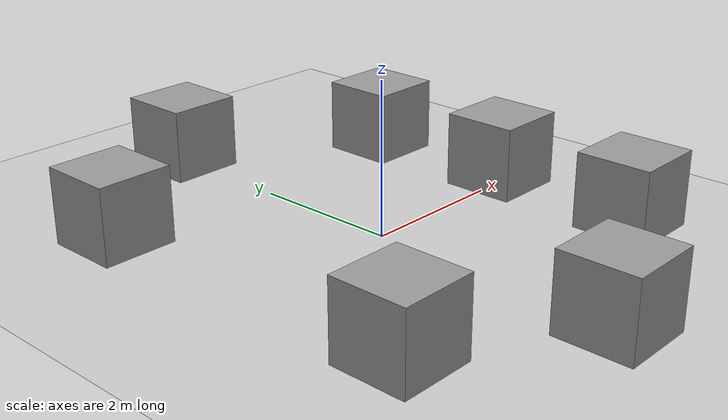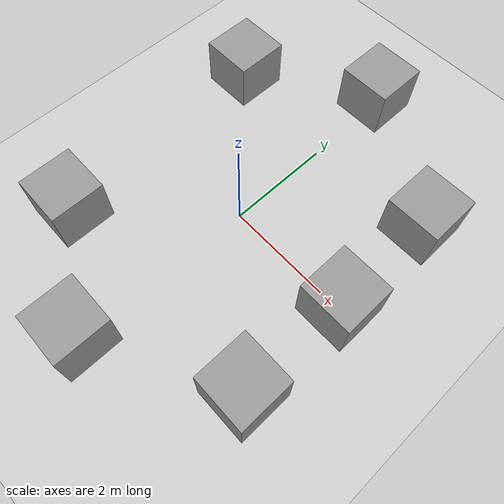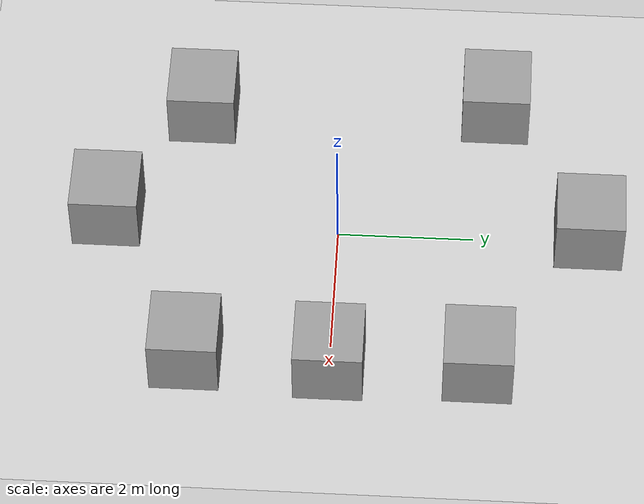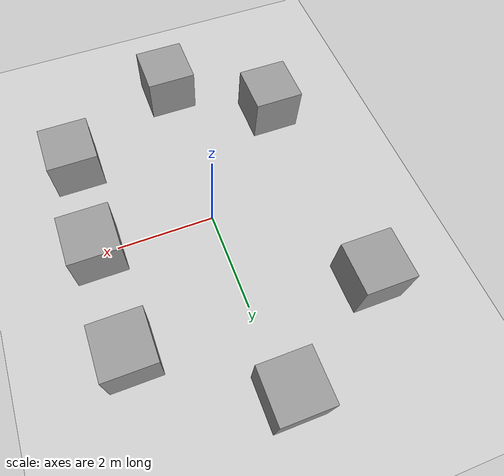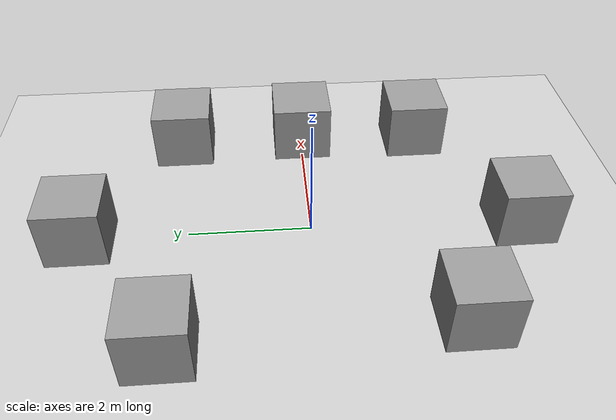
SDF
<sdf version="1.7">
 <world name="default">
  <light name="sun" type="directional">
   <pose>0 0 10 0 -0 0</pose>
   <diffuse>0.8 0.8 0.8 1</diffuse>
   <specular>0.2 0.2 0.2 1</specular>
   <attenuation>
    <range>1000</range>
    <constant>0.9</constant>
    <linear>0.01</linear>
    <quadratic>0.001</quadratic>
   </attenuation>
   <direction>-0.5 0.1 -0.9</direction>
   <spot><inner_angle>0</inner_angle><outer_angle>0</outer_angle><falloff>0</falloff></spot>
  </light>
  <model name="ground_plane">
   <static>1</static>
   <link name="link">
    <collision name="collision">
     <geometry><plane><normal>0 0 1</normal><size>100 100</size></plane></geometry>
     <surface>
      <contact><collide_bitmask>65535</collide_bitmask></contact>
      <friction><ode><mu>100</mu><mu2>50</mu2></ode></friction>
     </surface>
    </collision>
    <visual name="visual">
     <cast_shadows>0</cast_shadows>
     <geometry><plane><normal>0 0 1</normal><size>100 100</size></plane></geometry>
     <material>
      <script><uri>file://media/materials/scripts/gazebo.material</uri><name>Gazebo/Grey</name></script>
     </material>
    </visual>
   </link>
  </model>
  <gravity>0 0 -9.8</gravity>
  <magnetic_field>6e-06 2.3e-05 -4.2e-05</magnetic_field>
  <atmosphere type="adiabatic"/>
  <physics type="ode">
   <max_step_size>0.001</max_step_size>
   <real_time_factor>1</real_time_factor>
   <real_time_update_rate>1000</real_time_update_rate>
  </physics>
  <scene><ambient>0.4 0.4 0.4 1</ambient><background>0.7 0.7 0.7 1</background><shadows>1</shadows></scene>
  <spherical_coordinates>
   <surface_model>EARTH_WGS84</surface_model>
   <latitude_deg>0</latitude_deg>
   <longitude_deg>0</longitude_deg>
   <elevation>0</elevation>
   <heading_deg>0</heading_deg>
  </spherical_coordinates>
  <model name="unit_box">
   <pose>2.32698 -2.06494 0.499995 0 1e-05 0</pose>
   <link name="link">
    <inertial>
     <mass>1</mass>
     <inertia>
      <ixx>0.166667</ixx>
      <ixy>0</ixy>
      <ixz>0</ixz>
      <iyy>0.166667</iyy>
      <iyz>0</iyz>
      <izz>0.166667</izz>
     </inertia>
    </inertial>
    <collision name="collision"><geometry><box><size>1 1 1</size></box></geometry></collision>
    <visual name="visual">
     <geometry><box><size>1 1 1</size></box></geometry>
     <material>
      <script><name>Gazebo/Grey</name><uri>file://media/materials/scripts/gazebo.material</uri></script>
     </material>
    </visual>
   </link>
  </model>
  <model name="unit_box_0">
   <pose>2.3383 2.13902 0.499995 -1e-05 -0 -0</pose>
   <link name="link">
    <inertial>
     <mass>1</mass>
     <inertia>
      <ixx>0.166667</ixx>
      <ixy>0</ixy>
      <ixz>0</ixz>
      <iyy>0.166667</iyy>
      <iyz>0</iyz>
      <izz>0.166667</izz>
     </inertia>
    </inertial>
    <collision name="collision"><geometry><box><size>1 1 1</size></box></geometry></collision>
    <visual name="visual">
     <geometry><box><size>1 1 1</size></box></geometry>
     <material>
      <script><name>Gazebo/Grey</name><uri>file://media/materials/scripts/gazebo.material</uri></script>
     </material>
    </visual>
   </link>
  </model>
  <model name="unit_box_1">
   <pose>2.39418 0.002321 0.499995 0 1e-05 0</pose>
   <link name="link">
    <inertial>
     <mass>1</mass>
     <inertia>
      <ixx>0.166667</ixx>
      <ixy>0</ixy>
      <ixz>0</ixz>
      <iyy>0.166667</iyy>
      <iyz>0</iyz>
      <izz>0.166667</izz>
     </inertia>
    </inertial>
    <collision name="collision"><geometry><box><size>1 1 1</size></box></geometry></collision>
    <visual name="visual">
     <geometry><box><size>1 1 1</size></box></geometry>
     <material>
      <script><name>Gazebo/Grey</name><uri>file://media/materials/scripts/gazebo.material</uri></script>
     </material>
    </visual>
   </link>
  </model>
  <model name="unit_box_2">
   <pose>-2.08883 -2.13334 0.499995 -1e-05 -0 -0</pose>
   <link name="link">
    <inertial>
     <mass>1</mass>
     <inertia>
      <ixx>0.166667</ixx>
      <ixy>0</ixy>
      <ixz>0</ixz>
      <iyy>0.166667</iyy>
      <iyz>0</iyz>
      <izz>0.166667</izz>
     </inertia>
    </inertial>
    <collision name="collision"><geometry><box><size>1 1 1</size></box></geometry></collision>
    <visual name="visual">
     <geometry><box><size>1 1 1</size></box></geometry>
     <material>
      <script><name>Gazebo/Grey</name><uri>file://media/materials/scripts/gazebo.material</uri></script>
     </material>
    </visual>
   </link>
  </model>
  <model name="unit_box_3">
   <pose>-2.30104 2.26802 0.499995 0 1e-05 0</pose>
   <link name="link">
    <inertial>
     <mass>1</mass>
     <inertia>
      <ixx>0.166667</ixx>
      <ixy>0</ixy>
      <ixz>0</ixz>
      <iyy>0.166667</iyy>
      <iyz>0</iyz>
      <izz>0.166667</izz>
     </inertia>
    </inertial>
    <collision name="collision"><geometry><box><size>1 1 1</size></box></geometry></collision>
    <visual name="visual">
     <geometry><box><size>1 1 1</size></box></geometry>
     <material>
      <script><name>Gazebo/Grey</name><uri>file://media/materials/scripts/gazebo.material</uri></script>
     </material>
    </visual>
   </link>
  </model>
  <model name="unit_box_4">
   <pose>-0.127951 -3.41071 0.499995 -1e-05 -0 0</pose>
   <link name="link">
    <inertial>
     <mass>1</mass>
     <inertia>
      <ixx>0.166667</ixx>
      <ixy>0</ixy>
      <ixz>0</ixz>
      <iyy>0.166667</iyy>
      <iyz>0</iyz>
      <izz>0.166667</izz>
     </inertia>
    </inertial>
    <collision name="collision"><geometry><box><size>1 1 1</size></box></geometry></collision>
    <visual name="visual">
     <geometry><box><size>1 1 1</size></box></geometry>
     <material>
      <script><name>Gazebo/Grey</name><uri>file://media/materials/scripts/gazebo.material</uri></script>
     </material>
    </visual>
   </link>
  </model>
  <model name="unit_box_5">
   <pose>-0.063743 3.69675 0.5 0 -0 0</pose>
   <link name="link">
    <inertial>
     <mass>1</mass>
     <inertia>
      <ixx>0.166667</ixx>
      <ixy>0</ixy>
      <ixz>0</ixz>
      <iyy>0.166667</iyy>
      <iyz>0</iyz>
      <izz>0.166667</izz>
     </inertia>
    </inertial>
    <collision name="collision"><geometry><box><size>1 1 1</size></box></geometry></collision>
    <visual name="visual">
     <geometry><box><size>1 1 1</size></box></geometry>
     <material>
      <script><name>Gazebo/Grey</name><uri>file://media/materials/scripts/gazebo.material</uri></script>
     </material>
    </visual>
   </link>
  </model>
 </world>
</sdf>
